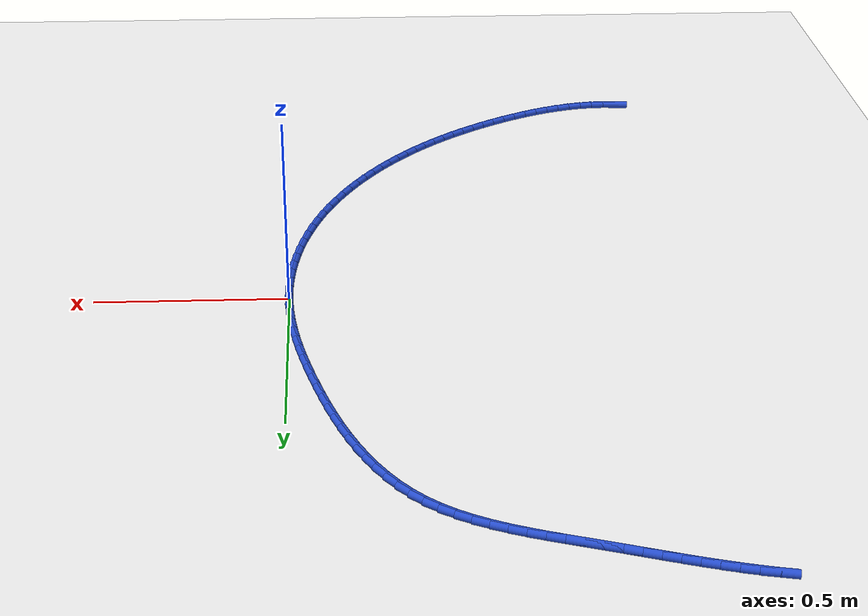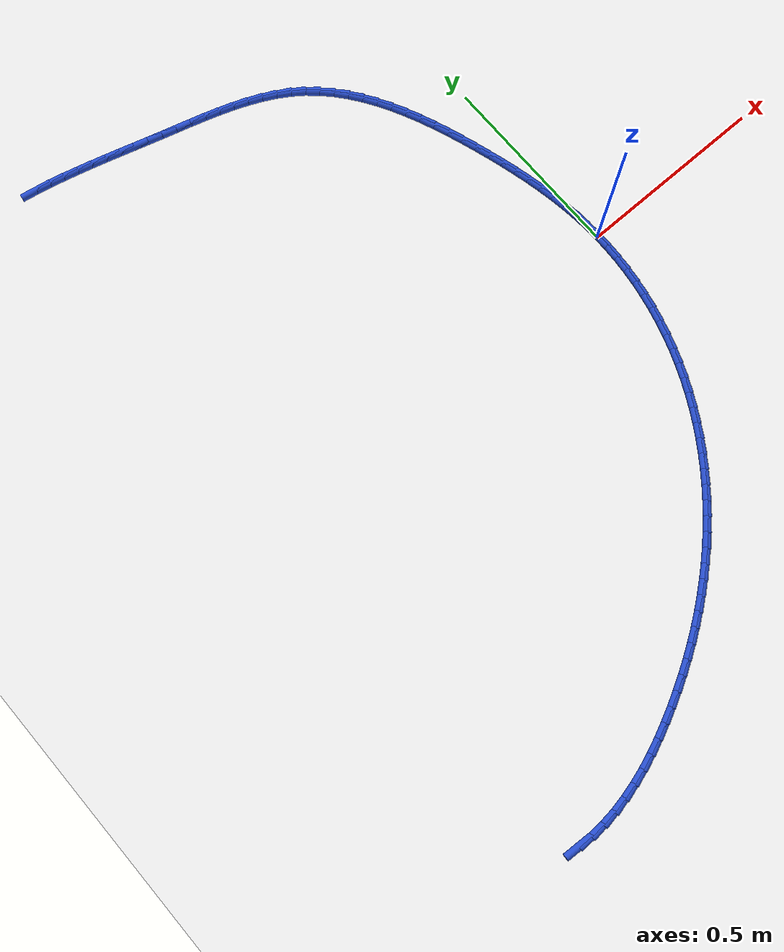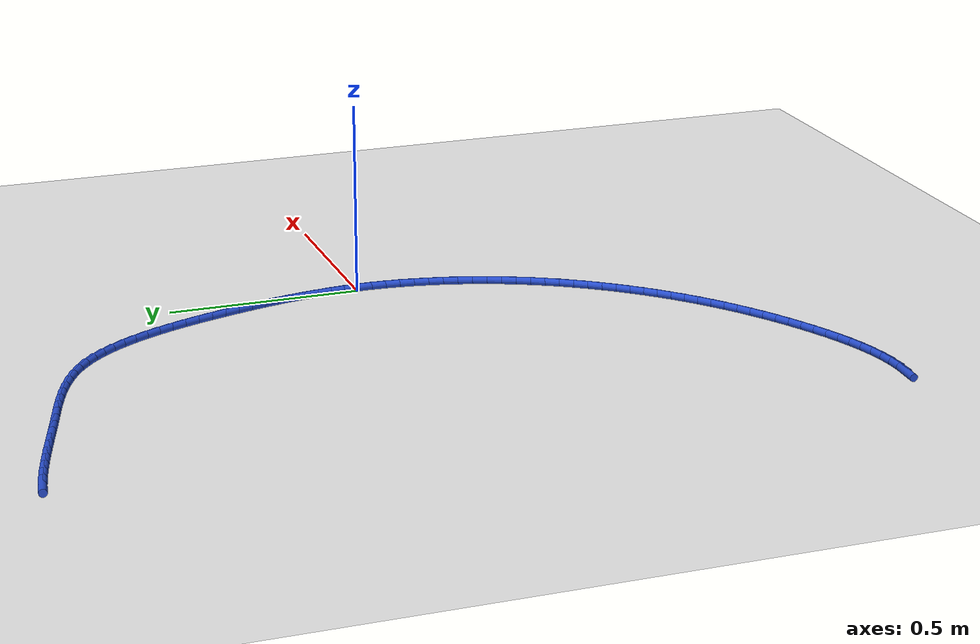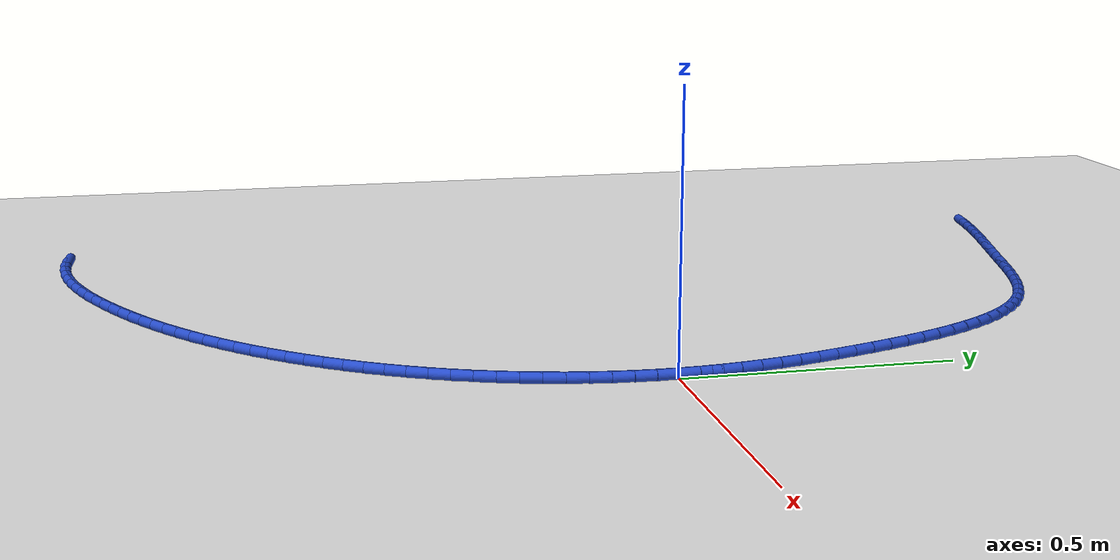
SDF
<sdf version="1.6">
 <world name="default">
  <model name="ground_plane">
   <static>1</static>
   <link name="link">
    <collision name="collision">
     <geometry><plane><normal>0 0 1</normal><size>100 100</size></plane></geometry>
     <surface><friction><ode><mu>100</mu><mu2>50</mu2></ode></friction></surface>
    </collision>
    <visual name="visual">
     <cast_shadows>0</cast_shadows>
     <geometry><plane><normal>0 0 1</normal><size>100 100</size></plane></geometry>
     <material>
      <script><uri>file://media/materials/scripts/gazebo.material</uri><name>Gazebo/WhiteGlow</name></script>
     </material>
    </visual>
   </link>
  </model>
  <model name="line">
   <link name="link_0">
    <pose>4.5102810375396984e-17 1.1102230246251565e-16 0.01 0 1.57 -1.5336546958635322</pose>
    <collision name="collision">
     <geometry><cylinder><radius>0.01</radius><length>0.08</length></cylinder></geometry>
    </collision>
    <visual name="visual">
     <material>
      <script><name>Gazebo/Blue</name><uri>file://media/materials/scripts/gazebo.material</uri></script>
     </material>
     <geometry><cylinder><radius>0.01</radius><length>0.08</length></cylinder></geometry>
    </visual>
   </link>
   <link name="link_1">
    <pose>-0.00140859651193151 0.03790756348250111 0.01 0 1.57 -1.491874024051306</pose>
    <collision name="collision">
     <geometry><cylinder><radius>0.01</radius><length>0.08</length></cylinder></geometry>
    </collision>
    <visual name="visual">
     <material>
      <script><name>Gazebo/Blue</name><uri>file://media/materials/scripts/gazebo.material</uri></script>
     </material>
     <geometry><cylinder><radius>0.01</radius><length>0.08</length></cylinder></geometry>
    </visual>
   </link>
   <link name="link_2">
    <pose>-0.004393703759648274 0.07565236767735652 0.01 0 1.57 -1.4528920092879853</pose>
    <collision name="collision">
     <geometry><cylinder><radius>0.01</radius><length>0.08</length></cylinder></geometry>
    </collision>
    <visual name="visual">
     <material>
      <script><name>Gazebo/Blue</name><uri>file://media/materials/scripts/gazebo.material</uri></script>
     </material>
     <geometry><cylinder><radius>0.01</radius><length>0.08</length></cylinder></geometry>
    </visual>
   </link>
   <link name="link_3">
    <pose>-0.008850377984110785 0.11327612713953274 0.01 0 1.57 -1.416918304851706</pose>
    <collision name="collision">
     <geometry><cylinder><radius>0.01</radius><length>0.08</length></cylinder></geometry>
    </collision>
    <visual name="visual">
     <material>
      <script><name>Gazebo/Blue</name><uri>file://media/materials/scripts/gazebo.material</uri></script>
     </material>
     <geometry><cylinder><radius>0.01</radius><length>0.08</length></cylinder></geometry>
    </visual>
   </link>
   <link name="link_4">
    <pose>-0.014673675426279589 0.15082055642399628 0.01 0 1.57 -1.3840978174065186</pose>
    <collision name="collision">
     <geometry><cylinder><radius>0.01</radius><length>0.08</length></cylinder></geometry>
    </collision>
    <visual name="visual">
     <material>
      <script><name>Gazebo/Blue</name><uri>file://media/materials/scripts/gazebo.material</uri></script>
     </material>
     <geometry><cylinder><radius>0.01</radius><length>0.08</length></cylinder></geometry>
    </visual>
   </link>
   <link name="link_5">
    <pose>-0.021758652327115203 0.18832737008571335 0.01 0 1.57 -1.3545178188295541</pose>
    <collision name="collision">
     <geometry><cylinder><radius>0.01</radius><length>0.08</length></cylinder></geometry>
    </collision>
    <visual name="visual">
     <material>
      <script><name>Gazebo/Blue</name><uri>file://media/materials/scripts/gazebo.material</uri></script>
     </material>
     <geometry><cylinder><radius>0.01</radius><length>0.08</length></cylinder></geometry>
    </visual>
   </link>
   <link name="link_6">
    <pose>-0.030000364927578172 0.22583828267965056 0.01 0 1.57 -1.3282167747622589</pose>
    <collision name="collision">
     <geometry><cylinder><radius>0.01</radius><length>0.08</length></cylinder></geometry>
    </collision>
    <visual name="visual">
     <material>
      <script><name>Gazebo/Blue</name><uri>file://media/materials/scripts/gazebo.material</uri></script>
     </material>
     <geometry><cylinder><radius>0.01</radius><length>0.08</length></cylinder></geometry>
    </visual>
   </link>
   <link name="link_7">
    <pose>-0.039293869468629034 0.26339500876077415 0.01 0 1.57 -1.3051937319607798</pose>
    <collision name="collision">
     <geometry><cylinder><radius>0.01</radius><length>0.08</length></cylinder></geometry>
    </collision>
    <visual name="visual">
     <material>
      <script><name>Gazebo/Blue</name><uri>file://media/materials/scripts/gazebo.material</uri></script>
     </material>
     <geometry><cylinder><radius>0.01</radius><length>0.08</length></cylinder></geometry>
    </visual>
   </link>
   <link name="link_8">
    <pose>-0.049534222191228314 0.30103926288405064 0.01 0 1.57 -1.285417388623524</pose>
    <collision name="collision">
     <geometry><cylinder><radius>0.01</radius><length>0.08</length></cylinder></geometry>
    </collision>
    <visual name="visual">
     <material>
      <script><name>Gazebo/Blue</name><uri>file://media/materials/scripts/gazebo.material</uri></script>
     </material>
     <geometry><cylinder><radius>0.01</radius><length>0.08</length></cylinder></geometry>
    </visual>
   </link>
   <link name="link_9">
    <pose>-0.060616479336336564 0.3388127596044465 0.01 0 1.57 -1.2687526856826317</pose>
    <collision name="collision">
     <geometry><cylinder><radius>0.01</radius><length>0.08</length></cylinder></geometry>
    </collision>
    <visual name="visual">
     <material>
      <script><name>Gazebo/Blue</name><uri>file://media/materials/scripts/gazebo.material</uri></script>
     </material>
     <geometry><cylinder><radius>0.01</radius><length>0.08</length></cylinder></geometry>
    </visual>
   </link>
   <link name="link_10">
    <pose>-0.07243815435386722 0.37675419999924725 0.01 0 1.57 -1.2521061961875937</pose>
    <collision name="collision">
     <geometry><cylinder><radius>0.01</radius><length>0.08</length></cylinder></geometry>
    </collision>
    <visual name="visual">
     <material>
      <script><name>Gazebo/Blue</name><uri>file://media/materials/scripts/gazebo.material</uri></script>
     </material>
     <geometry><cylinder><radius>0.01</radius><length>0.08</length></cylinder></geometry>
    </visual>
   </link>
   <link name="link_11">
    <pose>-0.08498776868880197 0.41479067454722834 0.01 0 1.57 -1.2315184554474672</pose>
    <collision name="collision">
     <geometry><cylinder><radius>0.01</radius><length>0.08</length></cylinder></geometry>
    </collision>
    <visual name="visual">
     <material>
      <script><name>Gazebo/Blue</name><uri>file://media/materials/scripts/gazebo.material</uri></script>
     </material>
     <geometry><cylinder><radius>0.01</radius><length>0.08</length></cylinder></geometry>
    </visual>
   </link>
   <link name="link_12">
    <pose>-0.09836951820511933 0.4527074126618063 0.01 0 1.57 -1.2065381680521998</pose>
    <collision name="collision">
     <geometry><cylinder><radius>0.01</radius><length>0.08</length></cylinder></geometry>
    </collision>
    <visual name="visual">
     <material>
      <script><name>Gazebo/Blue</name><uri>file://media/materials/scripts/gazebo.material</uri></script>
     </material>
     <geometry><cylinder><radius>0.01</radius><length>0.08</length></cylinder></geometry>
    </visual>
   </link>
   <link name="link_13">
    <pose>-0.11269507838357525 0.49028047088642485 0.01 0 1.57 -1.1768778447251382</pose>
    <collision name="collision">
     <geometry><cylinder><radius>0.01</radius><length>0.08</length></cylinder></geometry>
    </collision>
    <visual name="visual">
     <material>
      <script><name>Gazebo/Blue</name><uri>file://media/materials/scripts/gazebo.material</uri></script>
     </material>
     <geometry><cylinder><radius>0.01</radius><length>0.08</length></cylinder></geometry>
    </visual>
   </link>
   <link name="link_14">
    <pose>-0.1280761247049258 0.5272859057645286 0.01 0 1.57 -1.1421714141123296</pose>
    <collision name="collision">
     <geometry><cylinder><radius>0.01</radius><length>0.08</length></cylinder></geometry>
    </collision>
    <visual name="visual">
     <material>
      <script><name>Gazebo/Blue</name><uri>file://media/materials/scripts/gazebo.material</uri></script>
     </material>
     <geometry><cylinder><radius>0.01</radius><length>0.08</length></cylinder></geometry>
    </visual>
   </link>
   <link name="link_15">
    <pose>-0.144624332649927 0.5634997738395618 0.01 0 1.57 -1.1019831226483308</pose>
    <collision name="collision">
     <geometry><cylinder><radius>0.01</radius><length>0.08</length></cylinder></geometry>
    </collision>
    <visual name="visual">
     <material>
      <script><name>Gazebo/Blue</name><uri>file://media/materials/scripts/gazebo.material</uri></script>
     </material>
     <geometry><cylinder><radius>0.01</radius><length>0.08</length></cylinder></geometry>
    </visual>
   </link>
   <link name="link_16">
    <pose>-0.162451377699335 0.5986981316549687 0.01 0 1.57 -1.0558230609695325</pose>
    <collision name="collision">
     <geometry><cylinder><radius>0.01</radius><length>0.08</length></cylinder></geometry>
    </collision>
    <visual name="visual">
     <material>
      <script><name>Gazebo/Blue</name><uri>file://media/materials/scripts/gazebo.material</uri></script>
     </material>
     <geometry><cylinder><radius>0.01</radius><length>0.08</length></cylinder></geometry>
    </visual>
   </link>
   <link name="link_17">
    <pose>-0.18166893533390566 0.6326570357541934 0.01 0 1.57 -1.0031742453822057</pose>
    <collision name="collision">
     <geometry><cylinder><radius>0.01</radius><length>0.08</length></cylinder></geometry>
    </collision>
    <visual name="visual">
     <material>
      <script><name>Gazebo/Blue</name><uri>file://media/materials/scripts/gazebo.material</uri></script>
     </material>
     <geometry><cylinder><radius>0.01</radius><length>0.08</length></cylinder></geometry>
    </visual>
   </link>
   <link name="link_18">
    <pose>-0.2023886810343951 0.6651525426806802 0.01 0 1.57 -0.943537311469686</pose>
    <collision name="collision">
     <geometry><cylinder><radius>0.01</radius><length>0.08</length></cylinder></geometry>
    </collision>
    <visual name="visual">
     <material>
      <script><name>Gazebo/Blue</name><uri>file://media/materials/scripts/gazebo.material</uri></script>
     </material>
     <geometry><cylinder><radius>0.01</radius><length>0.08</length></cylinder></geometry>
    </visual>
   </link>
   <link name="link_19">
    <pose>-0.22472229028155938 0.6959607089778733 0.01 0 1.57 -0.8764990840651424</pose>
    <collision name="collision">
     <geometry><cylinder><radius>0.01</radius><length>0.08</length></cylinder></geometry>
    </collision>
    <visual name="visual">
     <material>
      <script><name>Gazebo/Blue</name><uri>file://media/materials/scripts/gazebo.material</uri></script>
     </material>
     <geometry><cylinder><radius>0.01</radius><length>0.08</length></cylinder></geometry>
    </visual>
   </link>
   <link name="link_20">
    <pose>-0.2487814385561546 0.7248575911892173 0.01 0 1.57 -0.8018289759981949</pose>
    <collision name="collision">
     <geometry><cylinder><radius>0.01</radius><length>0.08</length></cylinder></geometry>
    </collision>
    <visual name="visual">
     <material>
      <script><name>Gazebo/Blue</name><uri>file://media/materials/scripts/gazebo.material</uri></script>
     </material>
     <geometry><cylinder><radius>0.01</radius><length>0.08</length></cylinder></geometry>
    </visual>
   </link>
   <link name="link_21">
    <pose>-0.27467780133893666 0.7516192458581561 0.01 0 1.57 -0.7196001107904848</pose>
    <collision name="collision">
     <geometry><cylinder><radius>0.01</radius><length>0.08</length></cylinder></geometry>
    </collision>
    <visual name="visual">
     <material>
      <script><name>Gazebo/Blue</name><uri>file://media/materials/scripts/gazebo.material</uri></script>
     </material>
     <geometry><cylinder><radius>0.01</radius><length>0.08</length></cylinder></geometry>
    </visual>
   </link>
   <link name="link_22">
    <pose>-0.3025230541106615 0.776021729528134 0.01 0 1.57 -0.6312192984566917</pose>
    <collision name="collision">
     <geometry><cylinder><radius>0.01</radius><length>0.08</length></cylinder></geometry>
    </collision>
    <visual name="visual">
     <material>
      <script><name>Gazebo/Blue</name><uri>file://media/materials/scripts/gazebo.material</uri></script>
     </material>
     <geometry><cylinder><radius>0.01</radius><length>0.08</length></cylinder></geometry>
    </visual>
   </link>
   <link name="link_23">
    <pose>-0.33240955889382645 0.7978682827386274 0.01 0 1.57 -0.5476141615328594</pose>
    <collision name="collision">
     <geometry><cylinder><radius>0.01</radius><length>0.08</length></cylinder></geometry>
    </collision>
    <visual name="visual">
     <material>
      <script><name>Gazebo/Blue</name><uri>file://media/materials/scripts/gazebo.material</uri></script>
     </material>
     <geometry><cylinder><radius>0.01</radius><length>0.08</length></cylinder></geometry>
    </visual>
   </link>
   <link name="link_24">
    <pose>-0.36421509828093884 0.8172641699491763 0.01 0 1.57 -0.4756373567214833</pose>
    <collision name="collision">
     <geometry><cylinder><radius>0.01</radius><length>0.08</length></cylinder></geometry>
    </collision>
    <visual name="visual">
     <material>
      <script><name>Gazebo/Blue</name><uri>file://media/materials/scripts/gazebo.material</uri></script>
     </material>
     <geometry><cylinder><radius>0.01</radius><length>0.08</length></cylinder></geometry>
    </visual>
   </link>
   <link name="link_25">
    <pose>-0.3976835945579607 0.8345030661045459 0.01 0 1.57 -0.41532754965614477</pose>
    <collision name="collision">
     <geometry><cylinder><radius>0.01</radius><length>0.08</length></cylinder></geometry>
    </collision>
    <visual name="visual">
     <material>
      <script><name>Gazebo/Blue</name><uri>file://media/materials/scripts/gazebo.material</uri></script>
     </material>
     <geometry><cylinder><radius>0.01</radius><length>0.08</length></cylinder></geometry>
    </visual>
   </link>
   <link name="link_26">
    <pose>-0.4325569359528952 0.8498815091180465 0.01 0 1.57 -0.36622188825695445</pose>
    <collision name="collision">
     <geometry><cylinder><radius>0.01</radius><length>0.08</length></cylinder></geometry>
    </collision>
    <visual name="visual">
     <material>
      <script><name>Gazebo/Blue</name><uri>file://media/materials/scripts/gazebo.material</uri></script>
     </material>
     <geometry><cylinder><radius>0.01</radius><length>0.08</length></cylinder></geometry>
    </visual>
   </link>
   <link name="link_27">
    <pose>-0.468577010693745 0.8636960369029889 0.01 0 1.57 -0.327694638188425</pose>
    <collision name="collision">
     <geometry><cylinder><radius>0.01</radius><length>0.08</length></cylinder></geometry>
    </collision>
    <visual name="visual">
     <material>
      <script><name>Gazebo/Blue</name><uri>file://media/materials/scripts/gazebo.material</uri></script>
     </material>
     <geometry><cylinder><radius>0.01</radius><length>0.08</length></cylinder></geometry>
    </visual>
   </link>
   <link name="link_28">
    <pose>-0.5054857070085138 0.8762431873726835 0.01 0 1.57 -0.29912631322043587</pose>
    <collision name="collision">
     <geometry><cylinder><radius>0.01</radius><length>0.08</length></cylinder></geometry>
    </collision>
    <visual name="visual">
     <material>
      <script><name>Gazebo/Blue</name><uri>file://media/materials/scripts/gazebo.material</uri></script>
     </material>
     <geometry><cylinder><radius>0.01</radius><length>0.08</length></cylinder></geometry>
    </visual>
   </link>
   <link name="link_29">
    <pose>-0.5430249131252038 0.8878194984404401 0.01 0 1.57 -0.28000886338028597</pose>
    <collision name="collision">
     <geometry><cylinder><radius>0.01</radius><length>0.08</length></cylinder></geometry>
    </collision>
    <visual name="visual">
     <material>
      <script><name>Gazebo/Blue</name><uri>file://media/materials/scripts/gazebo.material</uri></script>
     </material>
     <geometry><cylinder><radius>0.01</radius><length>0.08</length></cylinder></geometry>
    </visual>
   </link>
   <link name="link_30">
    <pose>-0.5809365172718185 0.8987215080195696 0.01 0 1.57 -0.2700066309234214</pose>
    <collision name="collision">
     <geometry><cylinder><radius>0.01</radius><length>0.08</length></cylinder></geometry>
    </collision>
    <visual name="visual">
     <material>
      <script><name>Gazebo/Blue</name><uri>file://media/materials/scripts/gazebo.material</uri></script>
     </material>
     <geometry><cylinder><radius>0.01</radius><length>0.08</length></cylinder></geometry>
    </visual>
   </link>
   <link name="link_31">
    <pose>-0.6189624076763609 0.9092457540233827 0.01 0 1.57 -0.26898590548891355</pose>
    <collision name="collision">
     <geometry><cylinder><radius>0.01</radius><length>0.08</length></cylinder></geometry>
    </collision>
    <visual name="visual">
     <material>
      <script><name>Gazebo/Blue</name><uri>file://media/materials/scripts/gazebo.material</uri></script>
     </material>
     <geometry><cylinder><radius>0.01</radius><length>0.08</length></cylinder></geometry>
    </visual>
   </link>
   <link name="link_32">
    <pose>-0.6568445999169088 0.9196886119122679 0.01 0 1.57 -0.27399904156337</pose>
    <collision name="collision">
     <geometry><cylinder><radius>0.01</radius><length>0.08</length></cylinder></geometry>
    </collision>
    <visual name="visual">
     <material>
      <script><name>Gazebo/Blue</name><uri>file://media/materials/scripts/gazebo.material</uri></script>
     </material>
     <geometry><cylinder><radius>0.01</radius><length>0.08</length></cylinder></geometry>
    </visual>
   </link>
   <link name="link_33">
    <pose>-0.6944042913295657 0.9302454496844453 0.01 0 1.57 -0.27690350027894656</pose>
    <collision name="collision">
     <geometry><cylinder><radius>0.01</radius><length>0.08</length></cylinder></geometry>
    </collision>
    <visual name="visual">
     <material>
      <script><name>Gazebo/Blue</name><uri>file://media/materials/scripts/gazebo.material</uri></script>
     </material>
     <geometry><cylinder><radius>0.01</radius><length>0.08</length></cylinder></geometry>
    </visual>
   </link>
   <link name="link_34">
    <pose>-0.731676813019081 0.9408384776175218 0.01 0 1.57 -0.27625584032233397</pose>
    <collision name="collision">
     <geometry><cylinder><radius>0.01</radius><length>0.08</length></cylinder></geometry>
    </collision>
    <visual name="visual">
     <material>
      <script><name>Gazebo/Blue</name><uri>file://media/materials/scripts/gazebo.material</uri></script>
     </material>
     <geometry><cylinder><radius>0.01</radius><length>0.08</length></cylinder></geometry>
    </visual>
   </link>
   <link name="link_35">
    <pose>-0.7687333380848786 0.9513441844869389 0.01 0 1.57 -0.27199343530642894</pose>
    <collision name="collision">
     <geometry><cylinder><radius>0.01</radius><length>0.08</length></cylinder></geometry>
    </collision>
    <visual name="visual">
     <material>
      <script><name>Gazebo/Blue</name><uri>file://media/materials/scripts/gazebo.material</uri></script>
     </material>
     <geometry><cylinder><radius>0.01</radius><length>0.08</length></cylinder></geometry>
    </visual>
   </link>
   <link name="link_36">
    <pose>-0.8056450396263832 0.9616390590681381 0.01 0 1.57 -0.2640725277609289</pose>
    <collision name="collision">
     <geometry><cylinder><radius>0.01</radius><length>0.08</length></cylinder></geometry>
    </collision>
    <visual name="visual">
     <material>
      <script><name>Gazebo/Blue</name><uri>file://media/materials/scripts/gazebo.material</uri></script>
     </material>
     <geometry><cylinder><radius>0.01</radius><length>0.08</length></cylinder></geometry>
    </visual>
   </link>
   <link name="link_37">
    <pose>-0.8424830907430182 0.9715995901365594 0.01 0 1.57 -0.25247083539170967</pose>
    <collision name="collision">
     <geometry><cylinder><radius>0.01</radius><length>0.08</length></cylinder></geometry>
    </collision>
    <visual name="visual">
     <material>
      <script><name>Gazebo/Blue</name><uri>file://media/materials/scripts/gazebo.material</uri></script>
     </material>
     <geometry><cylinder><radius>0.01</radius><length>0.08</length></cylinder></geometry>
    </visual>
   </link>
   <link name="link_38">
    <pose>-0.8793186645342077 0.9811022664676445 0.01 0 1.57 -0.23719141389137738</pose>
    <collision name="collision">
     <geometry><cylinder><radius>0.01</radius><length>0.08</length></cylinder></geometry>
    </collision>
    <visual name="visual">
     <material>
      <script><name>Gazebo/Blue</name><uri>file://media/materials/scripts/gazebo.material</uri></script>
     </material>
     <geometry><cylinder><radius>0.01</radius><length>0.08</length></cylinder></geometry>
    </visual>
   </link>
   <link name="link_39">
    <pose>-0.9162229340993756 0.9900235768368337 0.01 0 1.57 -0.2182676704546696</pose>
    <collision name="collision">
     <geometry><cylinder><radius>0.01</radius><length>0.08</length></cylinder></geometry>
    </collision>
    <visual name="visual">
     <material>
      <script><name>Gazebo/Blue</name><uri>file://media/materials/scripts/gazebo.material</uri></script>
     </material>
     <geometry><cylinder><radius>0.01</radius><length>0.08</length></cylinder></geometry>
    </visual>
   </link>
   <link name="link_40">
    <pose>-0.9532670725379462 0.9982400100195686 0.01 0 1.57 -0.19577565909470604</pose>
    <collision name="collision">
     <geometry><cylinder><radius>0.01</radius><length>0.08</length></cylinder></geometry>
    </collision>
    <visual name="visual">
     <material>
      <script><name>Gazebo/Blue</name><uri>file://media/materials/scripts/gazebo.material</uri></script>
     </material>
     <geometry><cylinder><radius>0.01</radius><length>0.08</length></cylinder></geometry>
    </visual>
   </link>
   <link name="link_41">
    <pose>-0.9905215291467588 1.0056281591503855 0.01 0 1.57 -0.17009278077393494</pose>
    <collision name="collision">
     <geometry><cylinder><radius>0.01</radius><length>0.08</length></cylinder></geometry>
    </collision>
    <visual name="visual">
     <material>
      <script><name>Gazebo/Blue</name><uri>file://media/materials/scripts/gazebo.material</uri></script>
     </material>
     <geometry><cylinder><radius>0.01</radius><length>0.08</length></cylinder></geometry>
    </visual>
   </link>
   <link name="link_128">
    <pose>-1.0226763581228013 -1.0615655564466338 0.01 0 1.57 -0.04784144093733922</pose>
    <collision name="collision">
     <geometry><cylinder><radius>0.01</radius><length>0.08</length></cylinder></geometry>
    </collision>
    <visual name="visual">
     <material>
      <script><name>Gazebo/Blue</name><uri>file://media/materials/scripts/gazebo.material</uri></script>
     </material>
     <geometry><cylinder><radius>0.01</radius><length>0.08</length></cylinder></geometry>
    </visual>
   </link>
   <link name="link_129">
    <pose>-0.9854753396885714 -1.0633466658500497 0.01 0 1.57 0.03459707113460231</pose>
    <collision name="collision">
     <geometry><cylinder><radius>0.01</radius><length>0.08</length></cylinder></geometry>
    </collision>
    <visual name="visual">
     <material>
      <script><name>Gazebo/Blue</name><uri>file://media/materials/scripts/gazebo.material</uri></script>
     </material>
     <geometry><cylinder><radius>0.01</radius><length>0.08</length></cylinder></geometry>
    </visual>
   </link>
   <link name="link_130">
    <pose>-0.9480733823881718 -1.062052151138577 0.01 0 1.57 0.1103997889999485</pose>
    <collision name="collision">
     <geometry><cylinder><radius>0.01</radius><length>0.08</length></cylinder></geometry>
    </collision>
    <visual name="visual">
     <material>
      <script><name>Gazebo/Blue</name><uri>file://media/materials/scripts/gazebo.material</uri></script>
     </material>
     <geometry><cylinder><radius>0.01</radius><length>0.08</length></cylinder></geometry>
    </visual>
   </link>
   <link name="link_131">
    <pose>-0.9105569387828425 -1.057893434298672 0.01 0 1.57 0.17847380583347655</pose>
    <collision name="collision">
     <geometry><cylinder><radius>0.01</radius><length>0.08</length></cylinder></geometry>
    </collision>
    <visual name="visual">
     <material>
      <script><name>Gazebo/Blue</name><uri>file://media/materials/scripts/gazebo.material</uri></script>
     </material>
     <geometry><cylinder><radius>0.01</radius><length>0.08</length></cylinder></geometry>
    </visual>
   </link>
   <link name="link_132">
    <pose>-0.8730221191336973 -1.0511224067686469 0.01 0 1.57 0.2391200264361436</pose>
    <collision name="collision">
     <geometry><cylinder><radius>0.01</radius><length>0.08</length></cylinder></geometry>
    </collision>
    <visual name="visual">
     <material>
      <script><name>Gazebo/Blue</name><uri>file://media/materials/scripts/gazebo.material</uri></script>
     </material>
     <geometry><cylinder><radius>0.01</radius><length>0.08</length></cylinder></geometry>
    </visual>
   </link>
   <link name="link_133">
    <pose>-0.8355650337018474 -1.0419909599868122 0.01 0 1.57 0.29280968981837363</pose>
    <collision name="collision">
     <geometry><cylinder><radius>0.01</radius><length>0.08</length></cylinder></geometry>
    </collision>
    <visual name="visual">
     <material>
      <script><name>Gazebo/Blue</name><uri>file://media/materials/scripts/gazebo.material</uri></script>
     </material>
     <geometry><cylinder><radius>0.01</radius><length>0.08</length></cylinder></geometry>
    </visual>
   </link>
   <link name="link_134">
    <pose>-0.7982817927484058 -1.0307509853914802 0.01 0 1.57 0.340087563167728</pose>
    <collision name="collision">
     <geometry><cylinder><radius>0.01</radius><length>0.08</length></cylinder></geometry>
    </collision>
    <visual name="visual">
     <material>
      <script><name>Gazebo/Blue</name><uri>file://media/materials/scripts/gazebo.material</uri></script>
     </material>
     <geometry><cylinder><radius>0.01</radius><length>0.08</length></cylinder></geometry>
    </visual>
   </link>
   <link name="link_135">
    <pose>-0.7612685065344846 -1.0176543744209612 0.01 0 1.57 0.38150495790741573</pose>
    <collision name="collision">
     <geometry><cylinder><radius>0.01</radius><length>0.08</length></cylinder></geometry>
    </collision>
    <visual name="visual">
     <material>
      <script><name>Gazebo/Blue</name><uri>file://media/materials/scripts/gazebo.material</uri></script>
     </material>
     <geometry><cylinder><radius>0.01</radius><length>0.08</length></cylinder></geometry>
    </visual>
   </link>
   <link name="link_136">
    <pose>-0.7246212853211951 -1.002953018513566 0.01 0 1.57 0.4175772133882268</pose>
    <collision name="collision">
     <geometry><cylinder><radius>0.01</radius><length>0.08</length></cylinder></geometry>
    </collision>
    <visual name="visual">
     <material>
      <script><name>Gazebo/Blue</name><uri>file://media/materials/scripts/gazebo.material</uri></script>
     </material>
     <geometry><cylinder><radius>0.01</radius><length>0.08</length></cylinder></geometry>
    </visual>
   </link>
   <link name="link_137">
    <pose>-0.6884362393696514 -0.9868988091076072 0.01 0 1.57 0.4487585728182714</pose>
    <collision name="collision">
     <geometry><cylinder><radius>0.01</radius><length>0.08</length></cylinder></geometry>
    </collision>
    <visual name="visual">
     <material>
      <script><name>Gazebo/Blue</name><uri>file://media/materials/scripts/gazebo.material</uri></script>
     </material>
     <geometry><cylinder><radius>0.01</radius><length>0.08</length></cylinder></geometry>
    </visual>
   </link>
   <link name="link_138">
    <pose>-0.6528094789409649 -0.969743637641395 0.01 0 1.57 0.476104289611002</pose>
    <collision name="collision">
     <geometry><cylinder><radius>0.01</radius><length>0.08</length></cylinder></geometry>
    </collision>
    <visual name="visual">
     <material>
      <script><name>Gazebo/Blue</name><uri>file://media/materials/scripts/gazebo.material</uri></script>
     </material>
     <geometry><cylinder><radius>0.01</radius><length>0.08</length></cylinder></geometry>
    </visual>
   </link>
   <link name="link_139">
    <pose>-0.6178264868287168 -0.9517039841723289 0.01 0 1.57 0.5030737161151339</pose>
    <collision name="collision">
     <geometry><cylinder><radius>0.01</radius><length>0.08</length></cylinder></geometry>
    </collision>
    <visual name="visual">
     <material>
      <script><name>Gazebo/Blue</name><uri>file://media/materials/scripts/gazebo.material</uri></script>
     </material>
     <geometry><cylinder><radius>0.01</radius><length>0.08</length></cylinder></geometry>
    </visual>
   </link>
   <link name="link_140">
    <pose>-0.5835216316199509 -0.9328260130516033 0.01 0 1.57 0.5306630045626886</pose>
    <collision name="collision">
     <geometry><cylinder><radius>0.01</radius><length>0.08</length></cylinder></geometry>
    </collision>
    <visual name="visual">
     <material>
      <script><name>Gazebo/Blue</name><uri>file://media/materials/scripts/gazebo.material</uri></script>
     </material>
     <geometry><cylinder><radius>0.01</radius><length>0.08</length></cylinder></geometry>
    </visual>
   </link>
   <link name="link_141">
    <pose>-0.5499139338894318 -0.9131047481016399 0.01 0 1.57 0.5588691263001998</pose>
    <collision name="collision">
     <geometry><cylinder><radius>0.01</radius><length>0.08</length></cylinder></geometry>
    </collision>
    <visual name="visual">
     <material>
      <script><name>Gazebo/Blue</name><uri>file://media/materials/scripts/gazebo.material</uri></script>
     </material>
     <geometry><cylinder><radius>0.01</radius><length>0.08</length></cylinder></geometry>
    </visual>
   </link>
   <link name="link_142">
    <pose>-0.5170224112509628 -0.892535203278755 0.01 0 1.57 0.5876851375985788</pose>
    <collision name="collision">
     <geometry><cylinder><radius>0.01</radius><length>0.08</length></cylinder></geometry>
    </collision>
    <visual name="visual">
     <material>
      <script><name>Gazebo/Blue</name><uri>file://media/materials/scripts/gazebo.material</uri></script>
     </material>
     <geometry><cylinder><radius>0.01</radius><length>0.08</length></cylinder></geometry>
    </visual>
   </link>
   <link name="link_143">
    <pose>-0.484866081318349 -0.8711123925392668 0.01 0 1.57 0.6171000528494295</pose>
    <collision name="collision">
     <geometry><cylinder><radius>0.01</radius><length>0.08</length></cylinder></geometry>
    </collision>
    <visual name="visual">
     <material>
      <script><name>Gazebo/Blue</name><uri>file://media/materials/scripts/gazebo.material</uri></script>
     </material>
     <geometry><cylinder><radius>0.01</radius><length>0.08</length></cylinder></geometry>
    </visual>
   </link>
   <link name="link_144">
    <pose>-0.45346396170539394 -0.8488313298394922 0.01 0 1.57 0.6470985576390841</pose>
    <collision name="collision">
     <geometry><cylinder><radius>0.01</radius><length>0.08</length></cylinder></geometry>
    </collision>
    <visual name="visual">
     <material>
      <script><name>Gazebo/Blue</name><uri>file://media/materials/scripts/gazebo.material</uri></script>
     </material>
     <geometry><cylinder><radius>0.01</radius><length>0.08</length></cylinder></geometry>
    </visual>
   </link>
   <link name="link_145">
    <pose>-0.4228350700259014 -0.8256870291357481 0.01 0 1.57 0.677660762275025</pose>
    <collision name="collision">
     <geometry><cylinder><radius>0.01</radius><length>0.08</length></cylinder></geometry>
    </collision>
    <visual name="visual">
     <material>
      <script><name>Gazebo/Blue</name><uri>file://media/materials/scripts/gazebo.material</uri></script>
     </material>
     <geometry><cylinder><radius>0.01</radius><length>0.08</length></cylinder></geometry>
    </visual>
   </link>
   <link name="link_146">
    <pose>-0.39299842389367556 -0.8016745043843515 0.01 0 1.57 0.7087620087109057</pose>
    <collision name="collision">
     <geometry><cylinder><radius>0.01</radius><length>0.08</length></cylinder></geometry>
    </collision>
    <visual name="visual">
     <material>
      <script><name>Gazebo/Blue</name><uri>file://media/materials/scripts/gazebo.material</uri></script>
     </material>
     <geometry><cylinder><radius>0.01</radius><length>0.08</length></cylinder></geometry>
    </visual>
   </link>
   <link name="link_147">
    <pose>-0.3639730409225198 -0.7767887695416197 0.01 0 1.57 0.740372743954809</pose>
    <collision name="collision">
     <geometry><cylinder><radius>0.01</radius><length>0.08</length></cylinder></geometry>
    </collision>
    <visual name="visual">
     <material>
      <script><name>Gazebo/Blue</name><uri>file://media/materials/scripts/gazebo.material</uri></script>
     </material>
     <geometry><cylinder><radius>0.01</radius><length>0.08</length></cylinder></geometry>
    </visual>
   </link>
   <link name="link_148">
    <pose>-0.3357779387262389 -0.7510248385638698 0.01 0 1.57 0.7724584725125836</pose>
    <collision name="collision">
     <geometry><cylinder><radius>0.01</radius><length>0.08</length></cylinder></geometry>
    </collision>
    <visual name="visual">
     <material>
      <script><name>Gazebo/Blue</name><uri>file://media/materials/scripts/gazebo.material</uri></script>
     </material>
     <geometry><cylinder><radius>0.01</radius><length>0.08</length></cylinder></geometry>
    </visual>
   </link>
   <link name="link_149">
    <pose>-0.3084321349186368 -0.7243777254074195 0.01 0 1.57 0.8049797991097781</pose>
    <collision name="collision">
     <geometry><cylinder><radius>0.01</radius><length>0.08</length></cylinder></geometry>
    </collision>
    <visual name="visual">
     <material>
      <script><name>Gazebo/Blue</name><uri>file://media/materials/scripts/gazebo.material</uri></script>
     </material>
     <geometry><cylinder><radius>0.01</radius><length>0.08</length></cylinder></geometry>
    </visual>
   </link>
   <link name="link_150">
    <pose>-0.281954647113517 -0.6968424440285853 0.01 0 1.57 0.8378926361216282</pose>
    <collision name="collision">
     <geometry><cylinder><radius>0.01</radius><length>0.08</length></cylinder></geometry>
    </collision>
    <visual name="visual">
     <material>
      <script><name>Gazebo/Blue</name><uri>file://media/materials/scripts/gazebo.material</uri></script>
     </material>
     <geometry><cylinder><radius>0.01</radius><length>0.08</length></cylinder></geometry>
    </visual>
   </link>
   <link name="link_151">
    <pose>-0.25636452744597504 -0.6684140429986539 0.01 0 1.57 0.8711768983649919</pose>
    <collision name="collision">
     <geometry><cylinder><radius>0.01</radius><length>0.08</length></cylinder></geometry>
    </collision>
    <visual name="visual">
     <material>
      <script><name>Gazebo/Blue</name><uri>file://media/materials/scripts/gazebo.material</uri></script>
     </material>
     <geometry><cylinder><radius>0.01</radius><length>0.08</length></cylinder></geometry>
    </visual>
   </link>
   <link name="link_152">
    <pose>-0.23168996096147398 -0.6390967285825786 0.01 0 1.57 0.904906190043338</pose>
    <collision name="collision">
     <geometry><cylinder><radius>0.01</radius><length>0.08</length></cylinder></geometry>
    </collision>
    <visual name="visual">
     <material>
      <script><name>Gazebo/Blue</name><uri>file://media/materials/scripts/gazebo.material</uri></script>
     </material>
     <geometry><cylinder><radius>0.01</radius><length>0.08</length></cylinder></geometry>
    </visual>
   </link>
   <link name="link_153">
    <pose>-0.2079804820414711 -0.6089161143154125 0.01 0 1.57 0.939153396536155</pose>
    <collision name="collision">
     <geometry><cylinder><radius>0.01</radius><length>0.08</length></cylinder></geometry>
    </collision>
    <visual name="visual">
     <material>
      <script><name>Gazebo/Blue</name><uri>file://media/materials/scripts/gazebo.material</uri></script>
     </material>
     <geometry><cylinder><radius>0.01</radius><length>0.08</length></cylinder></geometry>
    </visual>
   </link>
   <link name="link_154">
    <pose>-0.18528867078138397 -0.5779008677110961 0.01 0 1.57 0.9739820689830719</pose>
    <collision name="collision">
     <geometry><cylinder><radius>0.01</radius><length>0.08</length></cylinder></geometry>
    </collision>
    <visual name="visual">
     <material>
      <script><name>Gazebo/Blue</name><uri>file://media/materials/scripts/gazebo.material</uri></script>
     </material>
     <geometry><cylinder><radius>0.01</radius><length>0.08</length></cylinder></geometry>
    </visual>
   </link>
   <link name="link_155">
    <pose>-0.16366710727662878 -0.5460796562835687 0.01 0 1.57 1.0094516518304757</pose>
    <collision name="collision">
     <geometry><cylinder><radius>0.01</radius><length>0.08</length></cylinder></geometry>
    </collision>
    <visual name="visual">
     <material>
      <script><name>Gazebo/Blue</name><uri>file://media/materials/scripts/gazebo.material</uri></script>
     </material>
     <geometry><cylinder><radius>0.01</radius><length>0.08</length></cylinder></geometry>
    </visual>
   </link>
   <link name="link_156">
    <pose>-0.14316837162262225 -0.5134811475467704 0.01 0 1.57 1.0456168150027028</pose>
    <collision name="collision">
     <geometry><cylinder><radius>0.01</radius><length>0.08</length></cylinder></geometry>
    </collision>
    <visual name="visual">
     <material>
      <script><name>Gazebo/Blue</name><uri>file://media/materials/scripts/gazebo.material</uri></script>
     </material>
     <geometry><cylinder><radius>0.01</radius><length>0.08</length></cylinder></geometry>
    </visual>
   </link>
   <link name="link_157">
    <pose>-0.1238450439147809 -0.4801340090146401 0.01 0 1.57 1.0825266528641837</pose>
    <collision name="collision">
     <geometry><cylinder><radius>0.01</radius><length>0.08</length></cylinder></geometry>
    </collision>
    <visual name="visual">
     <material>
      <script><name>Gazebo/Blue</name><uri>file://media/materials/scripts/gazebo.material</uri></script>
     </material>
     <geometry><cylinder><radius>0.01</radius><length>0.08</length></cylinder></geometry>
    </visual>
   </link>
   <link name="link_158">
    <pose>-0.10574970424852118 -0.44606690820111755 0.01 0 1.57 1.120223752674641</pose>
    <collision name="collision">
     <geometry><cylinder><radius>0.01</radius><length>0.08</length></cylinder></geometry>
    </collision>
    <visual name="visual">
     <material>
      <script><name>Gazebo/Blue</name><uri>file://media/materials/scripts/gazebo.material</uri></script>
     </material>
     <geometry><cylinder><radius>0.01</radius><length>0.08</length></cylinder></geometry>
    </visual>
   </link>
   <link name="link_159">
    <pose>-0.08893493271926037 -0.4113085126201434 0.01 0 1.57 1.15874314237508</pose>
    <collision name="collision">
     <geometry><cylinder><radius>0.01</radius><length>0.08</length></cylinder></geometry>
    </collision>
    <visual name="visual">
     <material>
      <script><name>Gazebo/Blue</name><uri>file://media/materials/scripts/gazebo.material</uri></script>
     </material>
     <geometry><cylinder><radius>0.01</radius><length>0.08</length></cylinder></geometry>
    </visual>
   </link>
   <link name="link_160">
    <pose>-0.07345330942241478 -0.3758874897856569 0.01 0 1.57 1.198072527063422</pose>
    <collision name="collision">
     <geometry><cylinder><radius>0.01</radius><length>0.08</length></cylinder></geometry>
    </collision>
    <visual name="visual">
     <material>
      <script><name>Gazebo/Blue</name><uri>file://media/materials/scripts/gazebo.material</uri></script>
     </material>
     <geometry><cylinder><radius>0.01</radius><length>0.08</length></cylinder></geometry>
    </visual>
   </link>
   <link name="link_161">
    <pose>-0.05935658621537042 -0.3398344934671608 0.01 0 1.57 1.2376622201774845</pose>
    <collision name="collision">
     <geometry><cylinder><radius>0.01</radius><length>0.08</length></cylinder></geometry>
    </collision>
    <visual name="visual">
     <material>
      <script><name>Gazebo/Blue</name><uri>file://media/materials/scripts/gazebo.material</uri></script>
     </material>
     <geometry><cylinder><radius>0.01</radius><length>0.08</length></cylinder></geometry>
    </visual>
   </link>
   <link name="link_162">
    <pose>-0.04668370601678968 -0.3032108954462049 0.01 0 1.57 1.2771758696773197</pose>
    <collision name="collision">
     <geometry><cylinder><radius>0.01</radius><length>0.08</length></cylinder></geometry>
    </collision>
    <visual name="visual">
     <material>
      <script><name>Gazebo/Blue</name><uri>file://media/materials/scripts/gazebo.material</uri></script>
     </material>
     <geometry><cylinder><radius>0.01</radius><length>0.08</length></cylinder></geometry>
    </visual>
   </link>
   <link name="link_163">
    <pose>-0.035463534185902756 -0.2661022352046215 0.01 0 1.57 1.3167551373500581</pose>
    <collision name="collision">
     <geometry><cylinder><radius>0.01</radius><length>0.08</length></cylinder></geometry>
    </collision>
    <visual name="visual">
     <material>
      <script><name>Gazebo/Blue</name><uri>file://media/materials/scripts/gazebo.material</uri></script>
     </material>
     <geometry><cylinder><radius>0.01</radius><length>0.08</length></cylinder></geometry>
    </visual>
   </link>
   <link name="link_164">
    <pose>-0.0257246639886014 -0.22859470475031696 0.01 0 1.57 1.3565540989983806</pose>
    <collision name="collision">
     <geometry><cylinder><radius>0.01</radius><length>0.08</length></cylinder></geometry>
    </collision>
    <visual name="visual">
     <material>
      <script><name>Gazebo/Blue</name><uri>file://media/materials/scripts/gazebo.material</uri></script>
     </material>
     <geometry><cylinder><radius>0.01</radius><length>0.08</length></cylinder></geometry>
    </visual>
   </link>
   <link name="link_165">
    <pose>-0.017495688690776702 -0.19077449609119532 0.01 0 1.57 1.3967266531893292</pose>
    <collision name="collision">
     <geometry><cylinder><radius>0.01</radius><length>0.08</length></cylinder></geometry>
    </collision>
    <visual name="visual">
     <material>
      <script><name>Gazebo/Blue</name><uri>file://media/materials/scripts/gazebo.material</uri></script>
     </material>
     <geometry><cylinder><radius>0.01</radius><length>0.08</length></cylinder></geometry>
    </visual>
   </link>
   <link name="link_166">
    <pose>-0.010805201558320016 -0.15272780123516144 0.01 0 1.57 1.4374265010866907</pose>
    <collision name="collision">
     <geometry><cylinder><radius>0.01</radius><length>0.08</length></cylinder></geometry>
    </collision>
    <visual name="visual">
     <material>
      <script><name>Gazebo/Blue</name><uri>file://media/materials/scripts/gazebo.material</uri></script>
     </material>
     <geometry><cylinder><radius>0.01</radius><length>0.08</length></cylinder></geometry>
    </visual>
   </link>
   <link name="link_167">
    <pose>-0.0056817958571226635 -0.1145408121901202 0.01 0 1.57 1.478806933631853</pose>
    <collision name="collision">
     <geometry><cylinder><radius>0.01</radius><length>0.08</length></cylinder></geometry>
    </collision>
    <visual name="visual">
     <material>
      <script><name>Gazebo/Blue</name><uri>file://media/materials/scripts/gazebo.material</uri></script>
     </material>
     <geometry><cylinder><radius>0.01</radius><length>0.08</length></cylinder></geometry>
    </visual>
   </link>
   <link name="link_168">
    <pose>-0.0021540648530759335 -0.07629972096397569 0.01 0 1.57 1.521020340143682</pose>
    <collision name="collision">
     <geometry><cylinder><radius>0.01</radius><length>0.08</length></cylinder></geometry>
    </collision>
    <visual name="visual">
     <material>
      <script><name>Gazebo/Blue</name><uri>file://media/materials/scripts/gazebo.material</uri></script>
     </material>
     <geometry><cylinder><radius>0.01</radius><length>0.08</length></cylinder></geometry>
    </visual>
   </link>
   <link name="link_169">
    <pose>-0.0002506018120712805 -0.038090719564634196 0.01 0 1.57 1.5642173437952502</pose>
    <collision name="collision">
     <geometry><cylinder><radius>0.01</radius><length>0.08</length></cylinder></geometry>
    </collision>
    <visual name="visual">
     <material>
      <script><name>Gazebo/Blue</name><uri>file://media/materials/scripts/gazebo.material</uri></script>
     </material>
     <geometry><cylinder><radius>0.01</radius><length>0.08</length></cylinder></geometry>
    </visual>
   </link>
   <link name="link_170">
    <pose>3.9898639947466563e-17 1.249000902703301e-16 0.01 0 1.57 -1.5330471928473604</pose>
    <collision name="collision">
     <geometry><cylinder><radius>0.01</radius><length>0.08</length></cylinder></geometry>
    </collision>
    <visual name="visual">
     <material>
      <script><name>Gazebo/Blue</name><uri>file://media/materials/scripts/gazebo.material</uri></script>
     </material>
     <geometry><cylinder><radius>0.01</radius><length>0.08</length></cylinder></geometry>
    </visual>
   </link>
   <link name="link_171">
    <pose>-0.001430852682753312 0.03788624572202247 0.01 0 1.57 -1.5330471928473601</pose>
    <collision name="collision">
     <geometry><cylinder><radius>0.01</radius><length>0.08</length></cylinder></geometry>
    </collision>
    <visual name="visual">
     <material>
      <script><name>Gazebo/Blue</name><uri>file://media/materials/scripts/gazebo.material</uri></script>
     </material>
     <geometry><cylinder><radius>0.01</radius><length>0.08</length></cylinder></geometry>
    </visual>
   </link>
  </model>
 </world>
</sdf>
